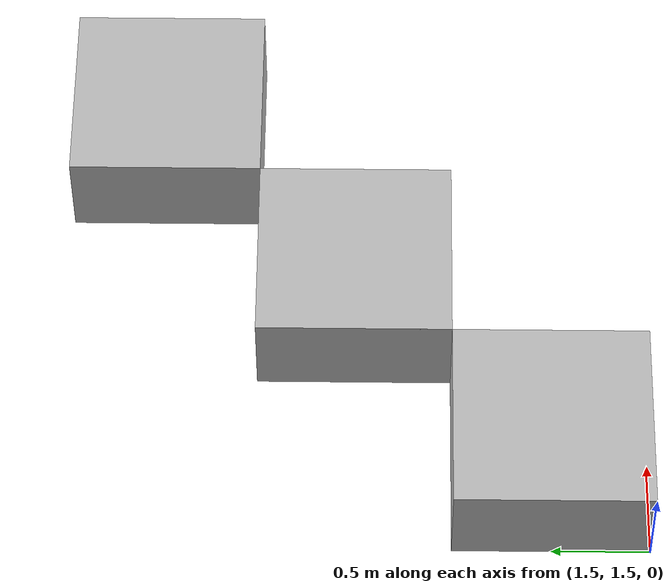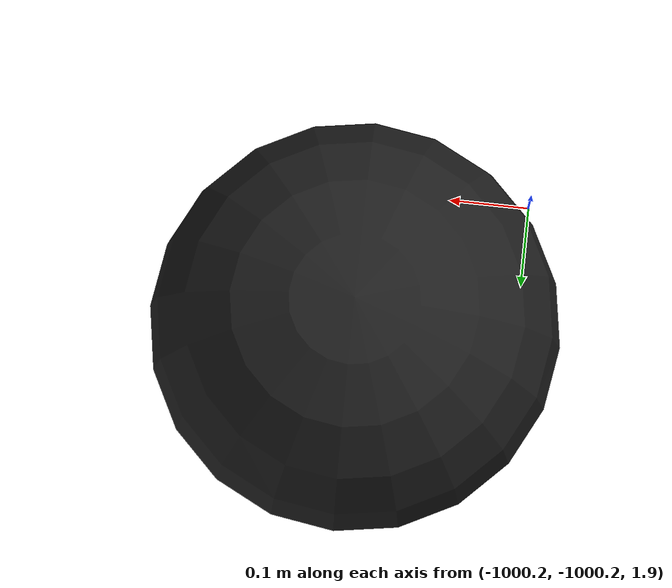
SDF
<sdf version="1.5">
 <world name="default">
  <plugin name="mrs_gazebo_static_transform_republisher_plugin" filename="libMRSGazeboStaticTransformRepublisher.so"/>
  <spherical_coordinates>
   <surface_model>EARTH_WGS84</surface_model>
   <latitude_deg>37.411802</latitude_deg>
   <longitude_deg>-121.995739</longitude_deg>
   <elevation>0.0</elevation>
   <heading_deg>0</heading_deg>
  </spherical_coordinates>
  <physics name="default_physics" default="0" type="ode">
   <gravity>0 0 -9.8066</gravity>
   <ode>
    <solver>
     <type>quick</type>
     <iters>10</iters>
     <sor>1.3</sor>
     <use_dynamic_moi_rescaling>0</use_dynamic_moi_rescaling>
    </solver>
    <constraints>
     <cfm>0</cfm>
     <erp>0.2</erp>
     <contact_max_correcting_vel>1000</contact_max_correcting_vel>
     <contact_surface_layer>0.001</contact_surface_layer>
    </constraints>
   </ode>
   <max_step_size>0.004</max_step_size>
   <real_time_factor>1</real_time_factor>
   <real_time_update_rate>250</real_time_update_rate>
   <magnetic_field>6.0e-06 2.3e-05 -4.2e-05</magnetic_field>
  </physics>
  <scene><shadows>false</shadows></scene>
  <light type="directional" name="sun">
   <pose>250 250 600 0 0 0</pose>
   <diffuse>0.8 0.8 0.8 1</diffuse>
   <specular>0.2 0.2 0.2 1</specular>
   <attenuation>
    <range>1000</range>
    <constant>0.9</constant>
    <linear>0.01</linear>
    <quadratic>0.001</quadratic>
   </attenuation>
   <direction>0 0 -1</direction>
  </light>
  <model name="land_base_1">
   <include><uri>model://land_base</uri><pose>2 2 0.0005 0 -0 0</pose></include>
  </model>
  <model name="land_base_2">
   <include><uri>model://land_base</uri><pose>3 3 0.0005 0 -0 0</pose></include>
  </model>
  <model name="land_base_3">
   <include><uri>model://land_base</uri><pose>4 4 0.0005 0 -0 0</pose></include>
  </model>
  <model name="the_void">
   <static>1</static>
   <link name="link">
    <pose>0 0 0.1 0 -0 0</pose>
    <visual name="the_void">
     <pose>0 0 2 0 -0 0</pose>
     <geometry><sphere><radius>0.25</radius></sphere></geometry>
     <material>
      <script><uri>file://media/materials/scripts/Gazebo.material</uri><name>Gazebo/Black</name></script>
     </material>
    </visual>
   </link>
   <pose>-1000 -1000 0 0 0 0</pose>
  </model>
  <plugin name="mrs_gazebo_rviz_cam_synchronizer" filename="libMRSGazeboRvizCameraSynchronizer.so">
   <target_frame_id>gazebo_user_camera</target_frame_id>
   <world_origin_frame_id>uav1/gps_origin</world_origin_frame_id>
   <frame_to_follow>uav1::base_link</frame_to_follow>
  </plugin>
 </world>
</sdf>

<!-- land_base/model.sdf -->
<sdf version='1.6'>
  <model name='land_base'>
    <link name='link_0'>
      <inertial>
        <mass>1</mass>
        <inertia>
          <ixx>0.166667</ixx>
          <ixy>0</ixy>
          <ixz>0</ixz>
          <iyy>0.166667</iyy>
          <iyz>0</iyz>
          <izz>0.166667</izz>
        </inertia>
      </inertial>
      <pose frame=''>0 0 0 0 -0 0</pose>
      <visual name='visual'>
        <pose frame=''>0 0 0 0 -0 0</pose>
        <geometry>
          <mesh>
            <uri>model://land_base/meshes/land_base_1.obj</uri>
            <scale>1 1 1</scale>
          </mesh>
        </geometry>
        <transparency>0</transparency>
        <cast_shadows>1</cast_shadows>
      </visual>
      <collision name='collision'>
        <laser_retro>0</laser_retro>
        <max_contacts>100</max_contacts>
        <pose frame=''>0 0 0 0 -0 0</pose>
        <geometry>
          <mesh>
            <uri>model://land_base/meshes/land_base_1.obj</uri>
            <scale>1 1 1</scale>
          </mesh>
        </geometry>
        <surface>
          <friction>
            <ode>
              <mu>100</mu>
              <mu2>100</mu2>
              <fdir1>0 0 0</fdir1>
              <slip1>0</slip1>
              <slip2>0</slip2>
            </ode>
            <torsional>
              <coefficient>1</coefficient>
              <patch_radius>1</patch_radius>
              <surface_radius>1</surface_radius>
              <use_patch_radius>1</use_patch_radius>
              <ode>
                <slip>0</slip>
              </ode>
            </torsional>
          </friction>
          <bounce>
            <restitution_coefficient>1</restitution_coefficient>
            <threshold>1e+06</threshold>
          </bounce>
          <contact>
            <collide_without_contact>0</collide_without_contact>
            <collide_without_contact_bitmask>1</collide_without_contact_bitmask>
            <collide_bitmask>1</collide_bitmask>
            <ode>
              <soft_cfm>0</soft_cfm>
              <soft_erp>0.2</soft_erp>
              <kp>1e+13</kp>
              <kd>1</kd>
              <max_vel>0.01</max_vel>
              <min_depth>0</min_depth>
            </ode>
            <bullet>
              <split_impulse>1</split_impulse>
              <split_impulse_penetration_threshold>-0.01</split_impulse_penetration_threshold>
              <soft_cfm>0</soft_cfm>
              <soft_erp>0.2</soft_erp>
              <kp>1e+13</kp>
              <kd>1</kd>
            </bullet>
          </contact>
        </surface>
      </collision>
    </link>
    <static>1</static>
    <allow_auto_disable>1</allow_auto_disable>
  </model>
</sdf>
